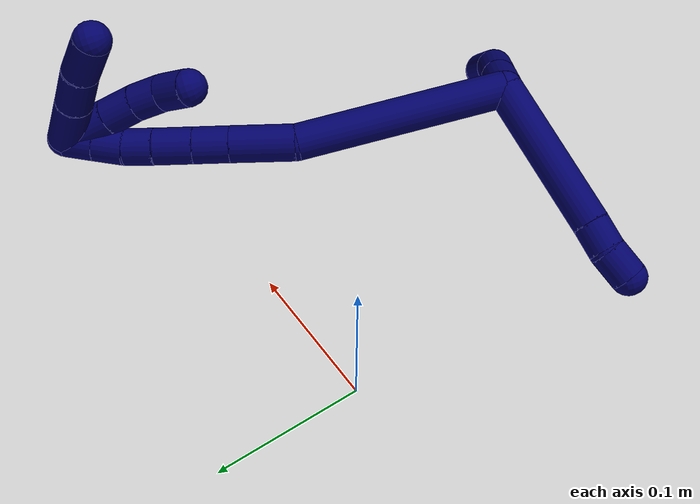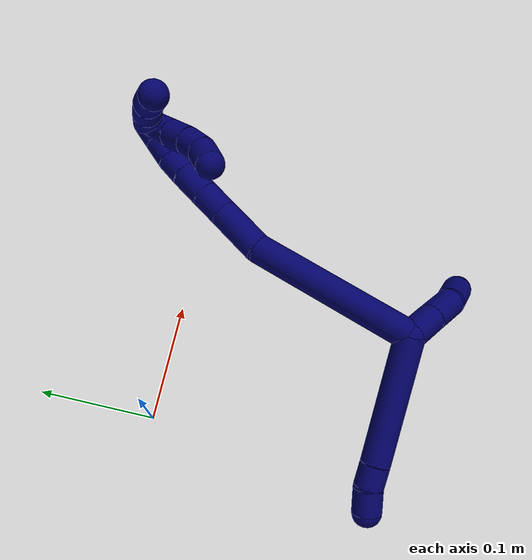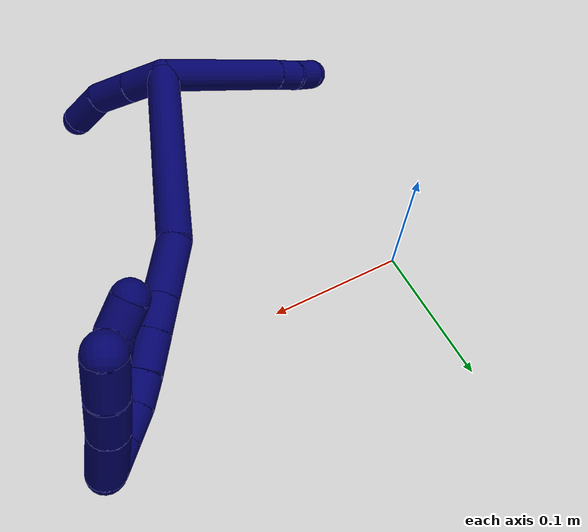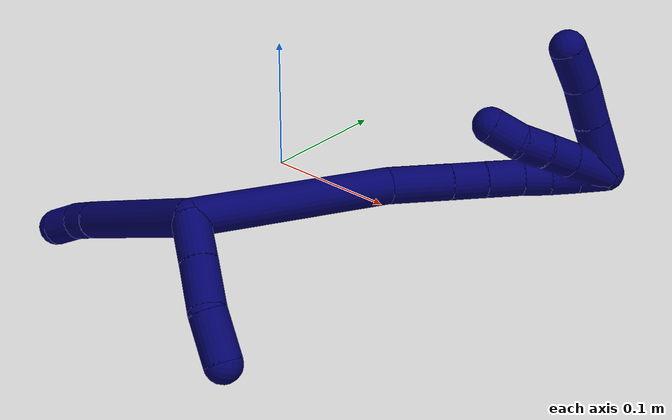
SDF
<sdf version="1.7">
 <world name="default">
  <model name="7">
   <static>0</static>
   <link name="7">
    <collision name="collision-cylinder-e_1_2_8">
     <pose>-0.037928 -0.035987 0.012086 1.2468 -0.784955 -0.578606</pose>
     <geometry><cylinder><radius>0.0125</radius><length>0.107325</length></cylinder></geometry>
     <surface>
      <friction><ode><mu>1.16</mu><mu2>1.16</mu2><slip1>0</slip1><slip2>0</slip2></ode></friction>
      <contact><ode><kp>1e+06</kp><kd>1</kd><max_vel>0</max_vel><min_depth>0.001</min_depth></ode></contact>
     </surface>
    </collision>
    <visual name="visual-cylinder-e_1_2_8">
     <pose>-0.037928 -0.035987 0.012086 1.2468 -0.784955 -0.578606</pose>
     <geometry><cylinder><radius>0.0125</radius><length>0.107325</length></cylinder></geometry>
     <material><ambient>0.003922 0 0.403922 1</ambient></material>
    </visual>
    <collision name="collision-cylinder-e_2_8_9">
     <pose>-0.083003 -0.079067 0.026179 1.29499 -0.769882 -0.594638</pose>
     <geometry><cylinder><radius>0.0125</radius><length>0.020536</length></cylinder></geometry>
     <surface>
      <friction><ode><mu>1.16</mu><mu2>1.16</mu2><slip1>0</slip1><slip2>0</slip2></ode></friction>
      <contact><ode><kp>1e+06</kp><kd>1</kd><max_vel>0</max_vel><min_depth>0.001</min_depth></ode></contact>
     </surface>
    </collision>
    <visual name="visual-cylinder-e_2_8_9">
     <pose>-0.083003 -0.079067 0.026179 1.29499 -0.769882 -0.594638</pose>
     <geometry><cylinder><radius>0.0125</radius><length>0.020536</length></cylinder></geometry>
     <material><ambient>0.003922 0 0.403922 1</ambient></material>
    </visual>
    <collision name="collision-cylinder-e_3_9_6">
     <pose>-0.096132 -0.094617 0.03209 1.13832 -0.570889 -0.371177</pose>
     <geometry><cylinder><radius>0.0125</radius><length>0.022139</length></cylinder></geometry>
     <surface>
      <friction><ode><mu>1.16</mu><mu2>1.16</mu2><slip1>0</slip1><slip2>0</slip2></ode></friction>
      <contact><ode><kp>1e+06</kp><kd>1</kd><max_vel>0</max_vel><min_depth>0.001</min_depth></ode></contact>
     </surface>
    </collision>
    <visual name="visual-cylinder-e_3_9_6">
     <pose>-0.096132 -0.094617 0.03209 1.13832 -0.570889 -0.371177</pose>
     <geometry><cylinder><radius>0.0125</radius><length>0.022139</length></cylinder></geometry>
     <material><ambient>0.003922 0 0.403922 1</ambient></material>
    </visual>
    <collision name="collision-cylinder-e_1_2_10">
     <pose>0.015675 -0.004697 0.000495 1.46581 1.27812 1.17909</pose>
     <geometry><cylinder><radius>0.0125</radius><length>0.032743</length></cylinder></geometry>
     <surface>
      <friction><ode><mu>1.16</mu><mu2>1.16</mu2><slip1>0</slip1><slip2>0</slip2></ode></friction>
      <contact><ode><kp>1e+06</kp><kd>1</kd><max_vel>0</max_vel><min_depth>0.001</min_depth></ode></contact>
     </surface>
    </collision>
    <visual name="visual-cylinder-e_1_2_10">
     <pose>0.015675 -0.004697 0.000495 1.46581 1.27812 1.17909</pose>
     <geometry><cylinder><radius>0.0125</radius><length>0.032743</length></cylinder></geometry>
     <material><ambient>0.003922 0 0.403922 1</ambient></material>
    </visual>
    <collision name="collision-cylinder-e_2_10_11">
     <pose>0.047372 -0.01446 0.001587 1.45358 1.26257 1.15281</pose>
     <geometry><cylinder><radius>0.0125</radius><length>0.033627</length></cylinder></geometry>
     <surface>
      <friction><ode><mu>1.16</mu><mu2>1.16</mu2><slip1>0</slip1><slip2>0</slip2></ode></friction>
      <contact><ode><kp>1e+06</kp><kd>1</kd><max_vel>0</max_vel><min_depth>0.001</min_depth></ode></contact>
     </surface>
    </collision>
    <visual name="visual-cylinder-e_2_10_11">
     <pose>0.047372 -0.01446 0.001587 1.45358 1.26257 1.15281</pose>
     <geometry><cylinder><radius>0.0125</radius><length>0.033627</length></cylinder></geometry>
     <material><ambient>0.003922 0 0.403922 1</ambient></material>
    </visual>
    <collision name="collision-cylinder-e_3_11_5">
     <pose>0.077555 -0.027895 -0.001301 1.96531 1.00144 1.37437</pose>
     <geometry><cylinder><radius>0.0125</radius><length>0.03363</length></cylinder></geometry>
     <surface>
      <friction><ode><mu>1.16</mu><mu2>1.16</mu2><slip1>0</slip1><slip2>0</slip2></ode></friction>
      <contact><ode><kp>1e+06</kp><kd>1</kd><max_vel>0</max_vel><min_depth>0.001</min_depth></ode></contact>
     </surface>
    </collision>
    <visual name="visual-cylinder-e_3_11_5">
     <pose>0.077555 -0.027895 -0.001301 1.96531 1.00144 1.37437</pose>
     <geometry><cylinder><radius>0.0125</radius><length>0.03363</length></cylinder></geometry>
     <material><ambient>0.003922 0 0.403922 1</ambient></material>
    </visual>
    <collision name="collision-cylinder-e_1_2_12">
     <pose>-0.00688 0.010795 -0.071129 -2.99098 -0.095347 1.12774</pose>
     <geometry><cylinder><radius>0.0125</radius><length>0.144543</length></cylinder></geometry>
     <surface>
      <friction><ode><mu>1.16</mu><mu2>1.16</mu2><slip1>0</slip1><slip2>0</slip2></ode></friction>
      <contact><ode><kp>1e+06</kp><kd>1</kd><max_vel>0</max_vel><min_depth>0.001</min_depth></ode></contact>
     </surface>
    </collision>
    <visual name="visual-cylinder-e_1_2_12">
     <pose>-0.00688 0.010795 -0.071129 -2.99098 -0.095347 1.12774</pose>
     <geometry><cylinder><radius>0.0125</radius><length>0.144543</length></cylinder></geometry>
     <material><ambient>0.003922 0 0.403922 1</ambient></material>
    </visual>
    <collision name="collision-cylinder-e_2_12_13">
     <pose>-0.010509 0.027206 -0.163278 -2.88049 0.148367 -1.03014</pose>
     <geometry><cylinder><radius>0.0125</radius><length>0.043999</length></cylinder></geometry>
     <surface>
      <friction><ode><mu>1.16</mu><mu2>1.16</mu2><slip1>0</slip1><slip2>0</slip2></ode></friction>
      <contact><ode><kp>1e+06</kp><kd>1</kd><max_vel>0</max_vel><min_depth>0.001</min_depth></ode></contact>
     </surface>
    </collision>
    <visual name="visual-cylinder-e_2_12_13">
     <pose>-0.010509 0.027206 -0.163278 -2.88049 0.148367 -1.03014</pose>
     <geometry><cylinder><radius>0.0125</radius><length>0.043999</length></cylinder></geometry>
     <material><ambient>0.003922 0 0.403922 1</ambient></material>
    </visual>
    <collision name="collision-cylinder-e_3_13_14">
     <pose>-0.005501 0.035952 -0.196042 -2.88115 0.143461 -1.00361</pose>
     <geometry><cylinder><radius>0.0125</radius><length>0.024559</length></cylinder></geometry>
     <surface>
      <friction><ode><mu>1.16</mu><mu2>1.16</mu2><slip1>0</slip1><slip2>0</slip2></ode></friction>
      <contact><ode><kp>1e+06</kp><kd>1</kd><max_vel>0</max_vel><min_depth>0.001</min_depth></ode></contact>
     </surface>
    </collision>
    <visual name="visual-cylinder-e_3_13_14">
     <pose>-0.005501 0.035952 -0.196042 -2.88115 0.143461 -1.00361</pose>
     <geometry><cylinder><radius>0.0125</radius><length>0.024559</length></cylinder></geometry>
     <material><ambient>0.003922 0 0.403922 1</ambient></material>
    </visual>
    <collision name="collision-cylinder-e_4_14_15">
     <pose>-0.001801 0.042423 -0.220419 -2.88305 0.147741 -1.03504</pose>
     <geometry><cylinder><radius>0.0125</radius><length>0.026423</length></cylinder></geometry>
     <surface>
      <friction><ode><mu>1.16</mu><mu2>1.16</mu2><slip1>0</slip1><slip2>0</slip2></ode></friction>
      <contact><ode><kp>1e+06</kp><kd>1</kd><max_vel>0</max_vel><min_depth>0.001</min_depth></ode></contact>
     </surface>
    </collision>
    <visual name="visual-cylinder-e_4_14_15">
     <pose>-0.001801 0.042423 -0.220419 -2.88305 0.147741 -1.03504</pose>
     <geometry><cylinder><radius>0.0125</radius><length>0.026423</length></cylinder></geometry>
     <material><ambient>0.003922 0 0.403922 1</ambient></material>
    </visual>
    <collision name="collision-cylinder-e_5_15_16">
     <pose>0.002126 0.048162 -0.242582 -2.89508 0.199064 -1.35688</pose>
     <geometry><cylinder><radius>0.0125</radius><length>0.020051</length></cylinder></geometry>
     <surface>
      <friction><ode><mu>1.16</mu><mu2>1.16</mu2><slip1>0</slip1><slip2>0</slip2></ode></friction>
      <contact><ode><kp>1e+06</kp><kd>1</kd><max_vel>0</max_vel><min_depth>0.001</min_depth></ode></contact>
     </surface>
    </collision>
    <visual name="visual-cylinder-e_5_15_16">
     <pose>0.002126 0.048162 -0.242582 -2.89508 0.199064 -1.35688</pose>
     <geometry><cylinder><radius>0.0125</radius><length>0.020051</length></cylinder></geometry>
     <material><ambient>0.003922 0 0.403922 1</ambient></material>
    </visual>
    <collision name="collision-cylinder-e_6_16_17">
     <pose>0.006808 0.054272 -0.261171 -2.75268 0.269003 -1.20402</pose>
     <geometry><cylinder><radius>0.0125</radius><length>0.02031</length></cylinder></geometry>
     <surface>
      <friction><ode><mu>1.16</mu><mu2>1.16</mu2><slip1>0</slip1><slip2>0</slip2></ode></friction>
      <contact><ode><kp>1e+06</kp><kd>1</kd><max_vel>0</max_vel><min_depth>0.001</min_depth></ode></contact>
     </surface>
    </collision>
    <visual name="visual-cylinder-e_6_16_17">
     <pose>0.006808 0.054272 -0.261171 -2.75268 0.269003 -1.20402</pose>
     <geometry><cylinder><radius>0.0125</radius><length>0.02031</length></cylinder></geometry>
     <material><ambient>0.003922 0 0.403922 1</ambient></material>
    </visual>
    <collision name="collision-cylinder-e_7_17_1">
     <pose>0.012114 0.061786 -0.279169 -2.73945 0.262202 -1.1484</pose>
     <geometry><cylinder><radius>0.0125</radius><length>0.020115</length></cylinder></geometry>
     <surface>
      <friction><ode><mu>1.16</mu><mu2>1.16</mu2><slip1>0</slip1><slip2>0</slip2></ode></friction>
      <contact><ode><kp>1e+06</kp><kd>1</kd><max_vel>0</max_vel><min_depth>0.001</min_depth></ode></contact>
     </surface>
    </collision>
    <visual name="visual-cylinder-e_7_17_1">
     <pose>0.012114 0.061786 -0.279169 -2.73945 0.262202 -1.1484</pose>
     <geometry><cylinder><radius>0.0125</radius><length>0.020115</length></cylinder></geometry>
     <material><ambient>0.003922 0 0.403922 1</ambient></material>
    </visual>
    <collision name="collision-cylinder-e_1_1_18">
     <pose>0.006697 0.081127 -0.27753 -0.973125 -0.403422 0.215507</pose>
     <geometry><cylinder><radius>0.0125</radius><length>0.040877</length></cylinder></geometry>
     <surface>
      <friction><ode><mu>1.16</mu><mu2>1.16</mu2><slip1>0</slip1><slip2>0</slip2></ode></friction>
      <contact><ode><kp>1e+06</kp><kd>1</kd><max_vel>0</max_vel><min_depth>0.001</min_depth></ode></contact>
     </surface>
    </collision>
    <visual name="visual-cylinder-e_1_1_18">
     <pose>0.006697 0.081127 -0.27753 -0.973125 -0.403422 0.215507</pose>
     <geometry><cylinder><radius>0.0125</radius><length>0.040877</length></cylinder></geometry>
     <material><ambient>0.003922 0 0.403922 1</ambient></material>
    </visual>
    <collision name="collision-cylinder-e_2_18_19">
     <pose>-0.006358 0.108203 -0.259195 -0.978851 -0.347309 0.186336</pose>
     <geometry><cylinder><radius>0.0125</radius><length>0.02957</length></cylinder></geometry>
     <surface>
      <friction><ode><mu>1.16</mu><mu2>1.16</mu2><slip1>0</slip1><slip2>0</slip2></ode></friction>
      <contact><ode><kp>1e+06</kp><kd>1</kd><max_vel>0</max_vel><min_depth>0.001</min_depth></ode></contact>
     </surface>
    </collision>
    <visual name="visual-cylinder-e_2_18_19">
     <pose>-0.006358 0.108203 -0.259195 -0.978851 -0.347309 0.186336</pose>
     <geometry><cylinder><radius>0.0125</radius><length>0.02957</length></cylinder></geometry>
     <material><ambient>0.003922 0 0.403922 1</ambient></material>
    </visual>
    <collision name="collision-cylinder-e_3_19_4">
     <pose>-0.015874 0.130534 -0.242398 -0.873613 -0.308257 0.144818</pose>
     <geometry><cylinder><radius>0.0125</radius><length>0.029554</length></cylinder></geometry>
     <surface>
      <friction><ode><mu>1.16</mu><mu2>1.16</mu2><slip1>0</slip1><slip2>0</slip2></ode></friction>
      <contact><ode><kp>1e+06</kp><kd>1</kd><max_vel>0</max_vel><min_depth>0.001</min_depth></ode></contact>
     </surface>
    </collision>
    <visual name="visual-cylinder-e_3_19_4">
     <pose>-0.015874 0.130534 -0.242398 -0.873613 -0.308257 0.144818</pose>
     <geometry><cylinder><radius>0.0125</radius><length>0.029554</length></cylinder></geometry>
     <material><ambient>0.003922 0 0.403922 1</ambient></material>
    </visual>
    <collision name="collision-cylinder-e_1_1_20">
     <pose>0.012736 0.069071 -0.271251 -0.203725 -0.114823 0.01175</pose>
     <geometry><cylinder><radius>0.0125</radius><length>0.034653</length></cylinder></geometry>
     <surface>
      <friction><ode><mu>1.16</mu><mu2>1.16</mu2><slip1>0</slip1><slip2>0</slip2></ode></friction>
      <contact><ode><kp>1e+06</kp><kd>1</kd><max_vel>0</max_vel><min_depth>0.001</min_depth></ode></contact>
     </surface>
    </collision>
    <visual name="visual-cylinder-e_1_1_20">
     <pose>0.012736 0.069071 -0.271251 -0.203725 -0.114823 0.01175</pose>
     <geometry><cylinder><radius>0.0125</radius><length>0.034653</length></cylinder></geometry>
     <material><ambient>0.003922 0 0.403922 1</ambient></material>
    </visual>
    <collision name="collision-cylinder-e_2_20_21">
     <pose>0.009521 0.074739 -0.24343 -0.196789 -0.109564 0.010826</pose>
     <geometry><cylinder><radius>0.0125</radius><length>0.022497</length></cylinder></geometry>
     <surface>
      <friction><ode><mu>1.16</mu><mu2>1.16</mu2><slip1>0</slip1><slip2>0</slip2></ode></friction>
      <contact><ode><kp>1e+06</kp><kd>1</kd><max_vel>0</max_vel><min_depth>0.001</min_depth></ode></contact>
     </surface>
    </collision>
    <visual name="visual-cylinder-e_2_20_21">
     <pose>0.009521 0.074739 -0.24343 -0.196789 -0.109564 0.010826</pose>
     <geometry><cylinder><radius>0.0125</radius><length>0.022497</length></cylinder></geometry>
     <material><ambient>0.003922 0 0.403922 1</ambient></material>
    </visual>
    <collision name="collision-cylinder-e_3_21_22">
     <pose>0.006069 0.078238 -0.222599 -0.132319 -0.219573 0.014607</pose>
     <geometry><cylinder><radius>0.0125</radius><length>0.020396</length></cylinder></geometry>
     <surface>
      <friction><ode><mu>1.16</mu><mu2>1.16</mu2><slip1>0</slip1><slip2>0</slip2></ode></friction>
      <contact><ode><kp>1e+06</kp><kd>1</kd><max_vel>0</max_vel><min_depth>0.001</min_depth></ode></contact>
     </surface>
    </collision>
    <visual name="visual-cylinder-e_3_21_22">
     <pose>0.006069 0.078238 -0.222599 -0.132319 -0.219573 0.014607</pose>
     <geometry><cylinder><radius>0.0125</radius><length>0.020396</length></cylinder></geometry>
     <material><ambient>0.003922 0 0.403922 1</ambient></material>
    </visual>
    <collision name="collision-cylinder-e_4_22_3">
     <pose>-0.001922 0.081207 -0.203245 -0.172803 -0.539733 0.04791</pose>
     <geometry><cylinder><radius>0.0125</radius><length>0.022455</length></cylinder></geometry>
     <surface>
      <friction><ode><mu>1.16</mu><mu2>1.16</mu2><slip1>0</slip1><slip2>0</slip2></ode></friction>
      <contact><ode><kp>1e+06</kp><kd>1</kd><max_vel>0</max_vel><min_depth>0.001</min_depth></ode></contact>
     </surface>
    </collision>
    <visual name="visual-cylinder-e_4_22_3">
     <pose>-0.001922 0.081207 -0.203245 -0.172803 -0.539733 0.04791</pose>
     <geometry><cylinder><radius>0.0125</radius><length>0.022455</length></cylinder></geometry>
     <material><ambient>0.003922 0 0.403922 1</ambient></material>
    </visual>
    <collision name="collision-sphere-3">
     <pose>-0.007691 0.082863 -0.193757 0 -0 0</pose>
     <geometry><sphere><radius>0.0125</radius></sphere></geometry>
     <surface>
      <friction><ode><mu>1.16</mu><mu2>1.16</mu2><slip1>0</slip1><slip2>0</slip2></ode></friction>
      <contact><ode><kp>1e+06</kp><kd>1</kd><max_vel>0</max_vel><min_depth>0.001</min_depth></ode></contact>
     </surface>
    </collision>
    <visual name="visual-sphere-3">
     <pose>-0.007691 0.082863 -0.193757 0 -0 0</pose>
     <geometry><sphere><radius>0.0125</radius></sphere></geometry>
     <material><ambient>0.003922 0 0.403922 1</ambient></material>
    </visual>
    <collision name="collision-sphere-22">
     <pose>0.003848 0.079551 -0.212733 0 -0 0</pose>
     <geometry><sphere><radius>0.0125</radius></sphere></geometry>
     <surface>
      <friction><ode><mu>1.16</mu><mu2>1.16</mu2><slip1>0</slip1><slip2>0</slip2></ode></friction>
      <contact><ode><kp>1e+06</kp><kd>1</kd><max_vel>0</max_vel><min_depth>0.001</min_depth></ode></contact>
     </surface>
    </collision>
    <visual name="visual-sphere-22">
     <pose>0.003848 0.079551 -0.212733 0 -0 0</pose>
     <geometry><sphere><radius>0.0125</radius></sphere></geometry>
     <material><ambient>0.003922 0 0.403922 1</ambient></material>
    </visual>
    <collision name="collision-sphere-21">
     <pose>0.008291 0.076925 -0.232465 0 -0 0</pose>
     <geometry><sphere><radius>0.0125</radius></sphere></geometry>
     <surface>
      <friction><ode><mu>1.16</mu><mu2>1.16</mu2><slip1>0</slip1><slip2>0</slip2></ode></friction>
      <contact><ode><kp>1e+06</kp><kd>1</kd><max_vel>0</max_vel><min_depth>0.001</min_depth></ode></contact>
     </surface>
    </collision>
    <visual name="visual-sphere-21">
     <pose>0.008291 0.076925 -0.232465 0 -0 0</pose>
     <geometry><sphere><radius>0.0125</radius></sphere></geometry>
     <material><ambient>0.003922 0 0.403922 1</ambient></material>
    </visual>
    <collision name="collision-sphere-20">
     <pose>0.010751 0.072553 -0.254395 0 -0 0</pose>
     <geometry><sphere><radius>0.0125</radius></sphere></geometry>
     <surface>
      <friction><ode><mu>1.16</mu><mu2>1.16</mu2><slip1>0</slip1><slip2>0</slip2></ode></friction>
      <contact><ode><kp>1e+06</kp><kd>1</kd><max_vel>0</max_vel><min_depth>0.001</min_depth></ode></contact>
     </surface>
    </collision>
    <visual name="visual-sphere-20">
     <pose>0.010751 0.072553 -0.254395 0 -0 0</pose>
     <geometry><sphere><radius>0.0125</radius></sphere></geometry>
     <material><ambient>0.003922 0 0.403922 1</ambient></material>
    </visual>
    <collision name="collision-sphere-4">
     <pose>-0.020357 0.141329 -0.233357 0 -0 0</pose>
     <geometry><sphere><radius>0.0125</radius></sphere></geometry>
     <surface>
      <friction><ode><mu>1.16</mu><mu2>1.16</mu2><slip1>0</slip1><slip2>0</slip2></ode></friction>
      <contact><ode><kp>1e+06</kp><kd>1</kd><max_vel>0</max_vel><min_depth>0.001</min_depth></ode></contact>
     </surface>
    </collision>
    <visual name="visual-sphere-4">
     <pose>-0.020357 0.141329 -0.233357 0 -0 0</pose>
     <geometry><sphere><radius>0.0125</radius></sphere></geometry>
     <material><ambient>0.003922 0 0.403922 1</ambient></material>
    </visual>
    <collision name="collision-sphere-11">
     <pose>0.063393 -0.019526 0.002183 0 -0 0</pose>
     <geometry><sphere><radius>0.0125</radius></sphere></geometry>
     <surface>
      <friction><ode><mu>1.16</mu><mu2>1.16</mu2><slip1>0</slip1><slip2>0</slip2></ode></friction>
      <contact><ode><kp>1e+06</kp><kd>1</kd><max_vel>0</max_vel><min_depth>0.001</min_depth></ode></contact>
     </surface>
    </collision>
    <visual name="visual-sphere-11">
     <pose>0.063393 -0.019526 0.002183 0 -0 0</pose>
     <geometry><sphere><radius>0.0125</radius></sphere></geometry>
     <material><ambient>0.003922 0 0.403922 1</ambient></material>
    </visual>
    <collision name="collision-sphere-10">
     <pose>0.031351 -0.009395 0.00099 0 -0 0</pose>
     <geometry><sphere><radius>0.0125</radius></sphere></geometry>
     <surface>
      <friction><ode><mu>1.16</mu><mu2>1.16</mu2><slip1>0</slip1><slip2>0</slip2></ode></friction>
      <contact><ode><kp>1e+06</kp><kd>1</kd><max_vel>0</max_vel><min_depth>0.001</min_depth></ode></contact>
     </surface>
    </collision>
    <visual name="visual-sphere-10">
     <pose>0.031351 -0.009395 0.00099 0 -0 0</pose>
     <geometry><sphere><radius>0.0125</radius></sphere></geometry>
     <material><ambient>0.003922 0 0.403922 1</ambient></material>
    </visual>
    <collision name="collision-sphere-6">
     <pose>-0.102114 -0.103074 0.035994 0 -0 0</pose>
     <geometry><sphere><radius>0.0125</radius></sphere></geometry>
     <surface>
      <friction><ode><mu>1.16</mu><mu2>1.16</mu2><slip1>0</slip1><slip2>0</slip2></ode></friction>
      <contact><ode><kp>1e+06</kp><kd>1</kd><max_vel>0</max_vel><min_depth>0.001</min_depth></ode></contact>
     </surface>
    </collision>
    <visual name="visual-sphere-6">
     <pose>-0.102114 -0.103074 0.035994 0 -0 0</pose>
     <geometry><sphere><radius>0.0125</radius></sphere></geometry>
     <material><ambient>0.003922 0 0.403922 1</ambient></material>
    </visual>
    <collision name="collision-sphere-9">
     <pose>-0.09015 -0.086161 0.028186 0 -0 0</pose>
     <geometry><sphere><radius>0.0125</radius></sphere></geometry>
     <surface>
      <friction><ode><mu>1.16</mu><mu2>1.16</mu2><slip1>0</slip1><slip2>0</slip2></ode></friction>
      <contact><ode><kp>1e+06</kp><kd>1</kd><max_vel>0</max_vel><min_depth>0.001</min_depth></ode></contact>
     </surface>
    </collision>
    <visual name="visual-sphere-9">
     <pose>-0.09015 -0.086161 0.028186 0 -0 0</pose>
     <geometry><sphere><radius>0.0125</radius></sphere></geometry>
     <material><ambient>0.003922 0 0.403922 1</ambient></material>
    </visual>
    <collision name="collision-sphere-2">
     <geometry><sphere><radius>0.0125</radius></sphere></geometry>
     <surface>
      <friction><ode><mu>1.16</mu><mu2>1.16</mu2><slip1>0</slip1><slip2>0</slip2></ode></friction>
      <contact><ode><kp>1e+06</kp><kd>1</kd><max_vel>0</max_vel><min_depth>0.001</min_depth></ode></contact>
     </surface>
    </collision>
    <visual name="visual-sphere-2">
     <geometry><sphere><radius>0.0125</radius></sphere></geometry>
     <material><ambient>0.003922 0 0.403922 1</ambient></material>
    </visual>
    <collision name="collision-sphere-19">
     <pose>-0.011391 0.11974 -0.251438 0 -0 0</pose>
     <geometry><sphere><radius>0.0125</radius></sphere></geometry>
     <surface>
      <friction><ode><mu>1.16</mu><mu2>1.16</mu2><slip1>0</slip1><slip2>0</slip2></ode></friction>
      <contact><ode><kp>1e+06</kp><kd>1</kd><max_vel>0</max_vel><min_depth>0.001</min_depth></ode></contact>
     </surface>
    </collision>
    <visual name="visual-sphere-19">
     <pose>-0.011391 0.11974 -0.251438 0 -0 0</pose>
     <geometry><sphere><radius>0.0125</radius></sphere></geometry>
     <material><ambient>0.003922 0 0.403922 1</ambient></material>
    </visual>
    <collision name="collision-sphere-8">
     <pose>-0.075856 -0.071973 0.024171 0 -0 0</pose>
     <geometry><sphere><radius>0.0125</radius></sphere></geometry>
     <surface>
      <friction><ode><mu>1.16</mu><mu2>1.16</mu2><slip1>0</slip1><slip2>0</slip2></ode></friction>
      <contact><ode><kp>1e+06</kp><kd>1</kd><max_vel>0</max_vel><min_depth>0.001</min_depth></ode></contact>
     </surface>
    </collision>
    <visual name="visual-sphere-8">
     <pose>-0.075856 -0.071973 0.024171 0 -0 0</pose>
     <geometry><sphere><radius>0.0125</radius></sphere></geometry>
     <material><ambient>0.003922 0 0.403922 1</ambient></material>
    </visual>
    <collision name="collision-sphere-5">
     <pose>0.091718 -0.036263 -0.004785 0 -0 0</pose>
     <geometry><sphere><radius>0.0125</radius></sphere></geometry>
     <surface>
      <friction><ode><mu>1.16</mu><mu2>1.16</mu2><slip1>0</slip1><slip2>0</slip2></ode></friction>
      <contact><ode><kp>1e+06</kp><kd>1</kd><max_vel>0</max_vel><min_depth>0.001</min_depth></ode></contact>
     </surface>
    </collision>
    <visual name="visual-sphere-5">
     <pose>0.091718 -0.036263 -0.004785 0 -0 0</pose>
     <geometry><sphere><radius>0.0125</radius></sphere></geometry>
     <material><ambient>0.003922 0 0.403922 1</ambient></material>
    </visual>
    <collision name="collision-sphere-12">
     <pose>-0.013761 0.021589 -0.142258 0 -0 0</pose>
     <geometry><sphere><radius>0.0125</radius></sphere></geometry>
     <surface>
      <friction><ode><mu>1.16</mu><mu2>1.16</mu2><slip1>0</slip1><slip2>0</slip2></ode></friction>
      <contact><ode><kp>1e+06</kp><kd>1</kd><max_vel>0</max_vel><min_depth>0.001</min_depth></ode></contact>
     </surface>
    </collision>
    <visual name="visual-sphere-12">
     <pose>-0.013761 0.021589 -0.142258 0 -0 0</pose>
     <geometry><sphere><radius>0.0125</radius></sphere></geometry>
     <material><ambient>0.003922 0 0.403922 1</ambient></material>
    </visual>
    <collision name="collision-sphere-13">
     <pose>-0.007257 0.032823 -0.184298 0 -0 0</pose>
     <geometry><sphere><radius>0.0125</radius></sphere></geometry>
     <surface>
      <friction><ode><mu>1.16</mu><mu2>1.16</mu2><slip1>0</slip1><slip2>0</slip2></ode></friction>
      <contact><ode><kp>1e+06</kp><kd>1</kd><max_vel>0</max_vel><min_depth>0.001</min_depth></ode></contact>
     </surface>
    </collision>
    <visual name="visual-sphere-13">
     <pose>-0.007257 0.032823 -0.184298 0 -0 0</pose>
     <geometry><sphere><radius>0.0125</radius></sphere></geometry>
     <material><ambient>0.003922 0 0.403922 1</ambient></material>
    </visual>
    <collision name="collision-sphere-14">
     <pose>-0.003746 0.039082 -0.207785 0 -0 0</pose>
     <geometry><sphere><radius>0.0125</radius></sphere></geometry>
     <surface>
      <friction><ode><mu>1.16</mu><mu2>1.16</mu2><slip1>0</slip1><slip2>0</slip2></ode></friction>
      <contact><ode><kp>1e+06</kp><kd>1</kd><max_vel>0</max_vel><min_depth>0.001</min_depth></ode></contact>
     </surface>
    </collision>
    <visual name="visual-sphere-14">
     <pose>-0.003746 0.039082 -0.207785 0 -0 0</pose>
     <geometry><sphere><radius>0.0125</radius></sphere></geometry>
     <material><ambient>0.003922 0 0.403922 1</ambient></material>
    </visual>
    <collision name="collision-sphere-15">
     <pose>0.000144 0.045764 -0.233052 0 -0 0</pose>
     <geometry><sphere><radius>0.0125</radius></sphere></geometry>
     <surface>
      <friction><ode><mu>1.16</mu><mu2>1.16</mu2><slip1>0</slip1><slip2>0</slip2></ode></friction>
      <contact><ode><kp>1e+06</kp><kd>1</kd><max_vel>0</max_vel><min_depth>0.001</min_depth></ode></contact>
     </surface>
    </collision>
    <visual name="visual-sphere-15">
     <pose>0.000144 0.045764 -0.233052 0 -0 0</pose>
     <geometry><sphere><radius>0.0125</radius></sphere></geometry>
     <material><ambient>0.003922 0 0.403922 1</ambient></material>
    </visual>
    <collision name="collision-sphere-16">
     <pose>0.004109 0.05056 -0.252113 0 -0 0</pose>
     <geometry><sphere><radius>0.0125</radius></sphere></geometry>
     <surface>
      <friction><ode><mu>1.16</mu><mu2>1.16</mu2><slip1>0</slip1><slip2>0</slip2></ode></friction>
      <contact><ode><kp>1e+06</kp><kd>1</kd><max_vel>0</max_vel><min_depth>0.001</min_depth></ode></contact>
     </surface>
    </collision>
    <visual name="visual-sphere-16">
     <pose>0.004109 0.05056 -0.252113 0 -0 0</pose>
     <geometry><sphere><radius>0.0125</radius></sphere></geometry>
     <material><ambient>0.003922 0 0.403922 1</ambient></material>
    </visual>
    <collision name="collision-sphere-17">
     <pose>0.009507 0.057984 -0.27023 0 -0 0</pose>
     <geometry><sphere><radius>0.0125</radius></sphere></geometry>
     <surface>
      <friction><ode><mu>1.16</mu><mu2>1.16</mu2><slip1>0</slip1><slip2>0</slip2></ode></friction>
      <contact><ode><kp>1e+06</kp><kd>1</kd><max_vel>0</max_vel><min_depth>0.001</min_depth></ode></contact>
     </surface>
    </collision>
    <visual name="visual-sphere-17">
     <pose>0.009507 0.057984 -0.27023 0 -0 0</pose>
     <geometry><sphere><radius>0.0125</radius></sphere></geometry>
     <material><ambient>0.003922 0 0.403922 1</ambient></material>
    </visual>
    <collision name="collision-sphere-1">
     <pose>0.014721 0.065588 -0.288108 0 -0 0</pose>
     <geometry><sphere><radius>0.0125</radius></sphere></geometry>
     <surface>
      <friction><ode><mu>1.16</mu><mu2>1.16</mu2><slip1>0</slip1><slip2>0</slip2></ode></friction>
      <contact><ode><kp>1e+06</kp><kd>1</kd><max_vel>0</max_vel><min_depth>0.001</min_depth></ode></contact>
     </surface>
    </collision>
    <visual name="visual-sphere-1">
     <pose>0.014721 0.065588 -0.288108 0 -0 0</pose>
     <geometry><sphere><radius>0.0125</radius></sphere></geometry>
     <material><ambient>0.003922 0 0.403922 1</ambient></material>
    </visual>
    <collision name="collision-sphere-18">
     <pose>-0.001326 0.096666 -0.266952 0 -0 0</pose>
     <geometry><sphere><radius>0.0125</radius></sphere></geometry>
     <surface>
      <friction><ode><mu>1.16</mu><mu2>1.16</mu2><slip1>0</slip1><slip2>0</slip2></ode></friction>
      <contact><ode><kp>1e+06</kp><kd>1</kd><max_vel>0</max_vel><min_depth>0.001</min_depth></ode></contact>
     </surface>
    </collision>
    <visual name="visual-sphere-18">
     <pose>-0.001326 0.096666 -0.266952 0 -0 0</pose>
     <geometry><sphere><radius>0.0125</radius></sphere></geometry>
     <material><ambient>0.003922 0 0.403922 1</ambient></material>
    </visual>
    <inertial>
     <pose>-0.005402 0.022374 -0.121959 0 -0 0</pose>
     <mass>0.75</mass>
     <inertia>
      <ixx>0.000384</ixx>
      <ixy>0</ixy>
      <ixz>0</ixz>
      <iyy>0.000168</iyy>
      <iyz>0</iyz>
      <izz>0.000109</izz>
     </inertia>
    </inertial>
   </link>
   <pose>0.101413 -0.191288 0.071273 1.29071 0.264683 -0.479103</pose>
  </model>
 </world>
</sdf>
